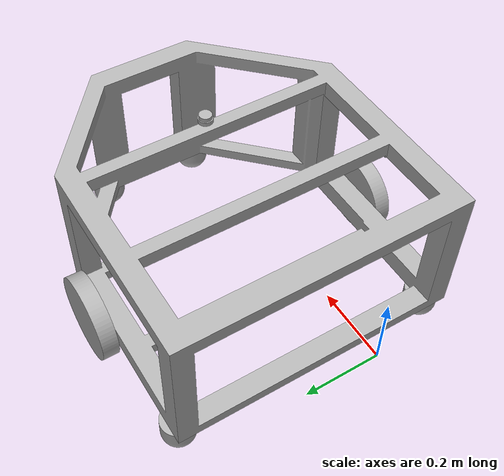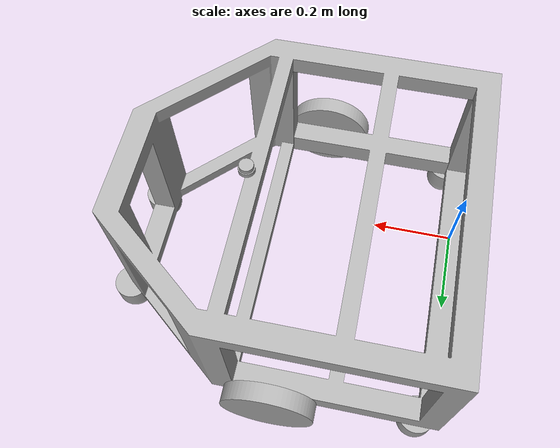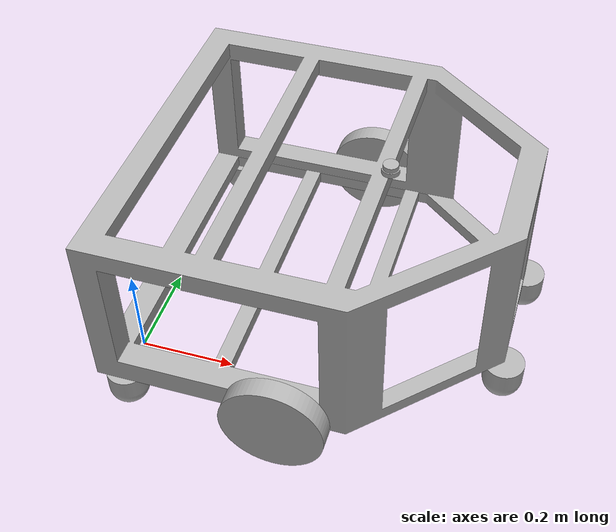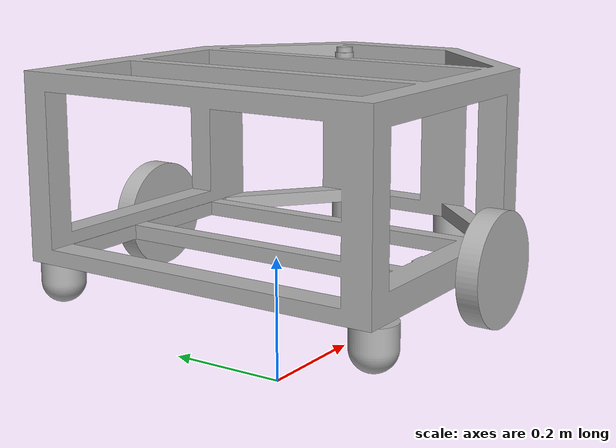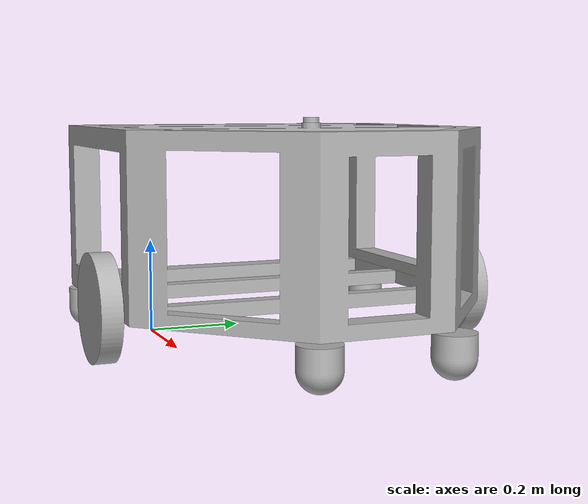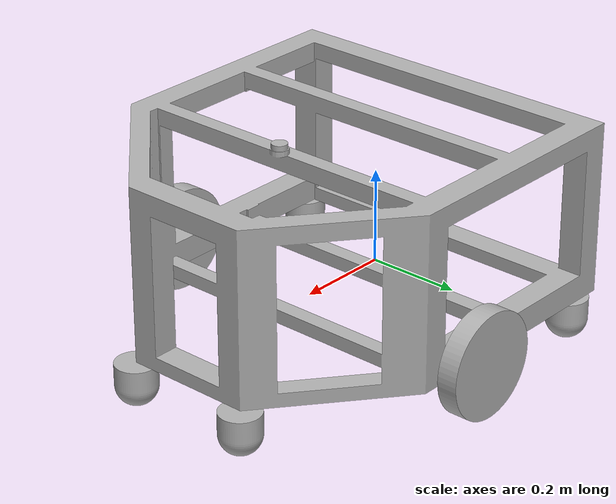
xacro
<?xml version="1.0" ?>
<robot name="brobot" xmlns:xacro="http://www.ros.org/wiki/xacro">

<xacro:include filename="$(find brobot)/urdf/materials.xacro" />
<xacro:include filename="$(find brobot)/urdf/brobot.trans" />
<xacro:include filename="$(find brobot)/urdf/brobot.gazebo" />
<link name="base_link">
  <inertial>
    <origin xyz="0.36008722023992734 0.17877322415490032 0.28599116682455195" rpy="0 0 0"/>
    <mass value="17.09676932760313"/>
    <inertia ixx="1.413287" iyy="1.384993" izz="2.203209" ixy="-0.033701" iyz="-0.001099" ixz="-0.005215"/>
  </inertial>
  <visual>
    <origin xyz="0 0 0" rpy="0 0 0"/>
    <geometry>
      <mesh filename="package://brobot/meshes/base_link.stl" scale="0.001 0.001 0.001"/>
    </geometry>
    <material name="silver"/>
  </visual>
  <collision>
    <origin xyz="0 0 0" rpy="0 0 0"/>
    <geometry>
      <mesh filename="package://brobot/meshes/base_link.stl" scale="0.001 0.001 0.001"/>
    </geometry>
  </collision>
</link>

<link name="r_wheel_1">
  <inertial>
    <origin xyz="-3.2856902820732614e-07 0.019999608403562186 1.1163417079629312e-08" rpy="0 0 0"/>
    <mass value="1.399469571431377"/>
    <inertia ixx="0.003862" iyy="0.007352" izz="0.003862" ixy="0.0" iyz="0.0" ixz="-0.0"/>
  </inertial>
  <visual>
    <origin xyz="-0.363812 -0.529033 -0.126483" rpy="0 0 0"/>
    <geometry>
      <mesh filename="package://brobot/meshes/r_wheel_1.stl" scale="0.001 0.001 0.001"/>
    </geometry>
    <material name="silver"/>
  </visual>
  <collision>
    <origin xyz="-0.363812 -0.529033 -0.126483" rpy="0 0 0"/>
    <geometry>
      <mesh filename="package://brobot/meshes/r_wheel_1.stl" scale="0.001 0.001 0.001"/>
    </geometry>
  </collision>
</link>

<link name="l_wheel_1">
  <inertial>
    <origin xyz="1.967615239073517e-07 -0.020000391596432687 -3.40553919092601e-07" rpy="0 0 0"/>
    <mass value="1.3994695714313785"/>
    <inertia ixx="0.003862" iyy="0.007352" izz="0.003862" ixy="0.0" iyz="-0.0" ixz="-0.0"/>
  </inertial>
  <visual>
    <origin xyz="-0.363368 0.174967 -0.126007" rpy="0 0 0"/>
    <geometry>
      <mesh filename="package://brobot/meshes/l_wheel_1.stl" scale="0.001 0.001 0.001"/>
    </geometry>
    <material name="silver"/>
  </visual>
  <collision>
    <origin xyz="-0.363368 0.174967 -0.126007" rpy="0 0 0"/>
    <geometry>
      <mesh filename="package://brobot/meshes/l_wheel_1.stl" scale="0.001 0.001 0.001"/>
    </geometry>
  </collision>
</link>

<link name="lidar_1">
  <inertial>
    <origin xyz="-2.4396960868200424e-07 -3.9159643477892914e-07 0.005000277452709756" rpy="0 0 0"/>
    <mass value="0.0074926984788116794"/>
    <inertia ixx="0.0" iyy="0.0" izz="1e-06" ixy="0.0" iyz="0.0" ixz="-0.0"/>
  </inertial>
  <visual>
    <origin xyz="-0.476907 -0.177033 -0.463615" rpy="0 0 0"/>
    <geometry>
      <mesh filename="package://brobot/meshes/lidar_1.stl" scale="0.001 0.001 0.001"/>
    </geometry>
    <material name="silver"/>
  </visual>
  <collision>
    <origin xyz="-0.476907 -0.177033 -0.463615" rpy="0 0 0"/>
    <geometry>
      <mesh filename="package://brobot/meshes/lidar_1.stl" scale="0.001 0.001 0.001"/>
    </geometry>
  </collision>
</link>

<link name="castor_2">
  <inertial>
    <origin xyz="0.05458324394921843 0.19796760840356512 -0.18519171907690637" rpy="0 0 0"/>
    <mass value="0.3684764808057021"/>
    <inertia ixx="0.000298" iyy="0.000298" izz="0.000272" ixy="0.0" iyz="-0.0" ixz="-0.0"/>
  </inertial>
  <visual>
    <origin xyz="0.009166 0.345935 -0.263586" rpy="0 0 0"/>
    <geometry>
      <mesh filename="package://brobot/meshes/castor_2.stl" scale="0.001 0.001 0.001"/>
    </geometry>
    <material name="silver"/>
  </visual>
  <collision>
    <origin xyz="0.009166 0.345935 -0.263586" rpy="0 0 0"/>
    <geometry>
      <mesh filename="package://brobot/meshes/castor_2.stl" scale="0.001 0.001 0.001"/>
    </geometry>
  </collision>
</link>

<link name="castor_3">
  <inertial>
    <origin xyz="0.054583243949218575 0.14796760840355988 -0.18519171907690607" rpy="0 0 0"/>
    <mass value="0.3684764808057021"/>
    <inertia ixx="0.000298" iyy="0.000298" izz="0.000272" ixy="0.0" iyz="-0.0" ixz="-0.0"/>
  </inertial>
  <visual>
    <origin xyz="0.009166 -0.354065 -0.263586" rpy="0 0 0"/>
    <geometry>
      <mesh filename="package://brobot/meshes/castor_3.stl" scale="0.001 0.001 0.001"/>
    </geometry>
    <material name="silver"/>
  </visual>
  <collision>
    <origin xyz="0.009166 -0.354065 -0.263586" rpy="0 0 0"/>
    <geometry>
      <mesh filename="package://brobot/meshes/castor_3.stl" scale="0.001 0.001 0.001"/>
    </geometry>
  </collision>
</link>

<link name="castor_1">
  <inertial>
    <origin xyz="2.4394920228321126e-07 -3.915964320588827e-07 -0.03522071907690685" rpy="0 0 0"/>
    <mass value="0.3684764808057021"/>
    <inertia ixx="0.000298" iyy="0.000298" izz="0.000272" ixy="0.0" iyz="-0.0" ixz="-0.0"/>
  </inertial>
  <visual>
    <origin xyz="-0.745417 -0.077033 -0.113615" rpy="0 0 0"/>
    <geometry>
      <mesh filename="package://brobot/meshes/castor_1.stl" scale="0.001 0.001 0.001"/>
    </geometry>
    <material name="silver"/>
  </visual>
  <collision>
    <origin xyz="-0.745417 -0.077033 -0.113615" rpy="0 0 0"/>
    <geometry>
      <mesh filename="package://brobot/meshes/castor_1.stl" scale="0.001 0.001 0.001"/>
    </geometry>
  </collision>
</link>

<link name="castor_4">
  <inertial>
    <origin xyz="2.4394920250525587e-07 -3.915964335576838e-07 -0.035220719076906784" rpy="0 0 0"/>
    <mass value="0.3684764808057021"/>
    <inertia ixx="0.000298" iyy="0.000298" izz="0.000272" ixy="0.0" iyz="-0.0" ixz="-0.0"/>
  </inertial>
  <visual>
    <origin xyz="-0.745417 -0.327033 -0.113615" rpy="0 0 0"/>
    <geometry>
      <mesh filename="package://brobot/meshes/castor_4.stl" scale="0.001 0.001 0.001"/>
    </geometry>
    <material name="silver"/>
  </visual>
  <collision>
    <origin xyz="-0.745417 -0.327033 -0.113615" rpy="0 0 0"/>
    <geometry>
      <mesh filename="package://brobot/meshes/castor_4.stl" scale="0.001 0.001 0.001"/>
    </geometry>
  </collision>
</link>

<joint name="Rev5" type="continuous">
  <origin xyz="0.363812 0.529033 0.126483" rpy="0 0 0"/>
  <parent link="base_link"/>
  <child link="r_wheel_1"/>
  <axis xyz="0.0 1.0 0.0"/>
</joint>

<joint name="Rev6" type="continuous">
  <origin xyz="0.363368 -0.174967 0.126007" rpy="0 0 0"/>
  <parent link="base_link"/>
  <child link="l_wheel_1"/>
  <axis xyz="-0.0 1.0 -0.0"/>
</joint>

<joint name="Rev7" type="continuous">
  <origin xyz="0.476907 0.177033 0.463615" rpy="0 0 0"/>
  <parent link="base_link"/>
  <child link="lidar_1"/>
  <axis xyz="-0.0 -0.0 1.0"/>
</joint>

<joint name="Rigid9" type="fixed">
  <origin xyz="-0.009166 -0.345935 0.263586" rpy="0 0 0"/>
  <parent link="base_link"/>
  <child link="castor_2"/>
</joint>

<joint name="Rigid10" type="fixed">
  <origin xyz="-0.009166 0.354065 0.263586" rpy="0 0 0"/>
  <parent link="base_link"/>
  <child link="castor_3"/>
</joint>

<joint name="Rigid12" type="fixed">
  <origin xyz="0.745417 0.077033 0.113615" rpy="0 0 0"/>
  <parent link="base_link"/>
  <child link="castor_1"/>
</joint>

<joint name="Rigid13" type="fixed">
  <origin xyz="0.745417 0.327033 0.113615" rpy="0 0 0"/>
  <parent link="base_link"/>
  <child link="castor_4"/>
</joint>

</robot>

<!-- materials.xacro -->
<robot name="brobot" xmlns:xacro="http://www.ros.org/wiki/xacro" >

<material name="silver">
  <color rgba="0.700 0.700 0.700 1.000"/>
</material>

</robot>

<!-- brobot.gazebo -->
<robot name="brobot" xmlns:xacro="http://www.ros.org/wiki/xacro" >

<xacro:property name="body_color" value="Gazebo/Silver" />

	<gazebo>
	  <plugin name="control" filename="libgazebo_ros_control.so"/>
	</gazebo>
	<gazebo reference="base_link">
	  <material>${body_color}</material>
	  <mu1>0.2</mu1>
	  <mu2>0.2</mu2>
	  <selfCollide>true</selfCollide>
	  <gravity>true</gravity>
	</gazebo>

	<gazebo reference="r_wheel_1">
	  <material>${body_color}</material>
	  <mu1>0.2</mu1>
	  <mu2>0.2</mu2>
	  <selfCollide>true</selfCollide>
	</gazebo>

	<gazebo reference="l_wheel_1">
	  <material>${body_color}</material>
	  <mu1>0.2</mu1>
	  <mu2>0.2</mu2>
	  <selfCollide>true</selfCollide>
	</gazebo>

	<gazebo reference="lidar_1">
	  <material>${body_color}</material>
	  <mu1>0.2</mu1>
	  <mu2>0.2</mu2>
	  <selfCollide>true</selfCollide>
	</gazebo>

	<gazebo reference="castor_2">
	  <material>${body_color}</material>
	  <mu1>0.2</mu1>
	  <mu2>0.2</mu2>
	  <selfCollide>true</selfCollide>
	</gazebo>

	<gazebo reference="castor_3">
	  <material>${body_color}</material>
	  <mu1>0.2</mu1>
	  <mu2>0.2</mu2>
	  <selfCollide>true</selfCollide>
	</gazebo>

	<gazebo reference="castor_1">
	  <material>${body_color}</material>
	  <mu1>0.2</mu1>
	  <mu2>0.2</mu2>
	  <selfCollide>true</selfCollide>
	</gazebo>

	<gazebo reference="castor_4">
	  <material>${body_color}</material>
	  <mu1>0.2</mu1>
	  <mu2>0.2</mu2>
	  <selfCollide>true</selfCollide>
	</gazebo>

	<gazebo>
  		<plugin name="differential_drive_controller" filename="libgazebo_ros_diff_drive.so">

		    <updateRate>10</updateRate>
		    <leftJoint>Rev6</leftJoint>
		    <rightJoint>Rev5</rightJoint>
		    <wheelSeparation>0.740</wheelSeparation>
		    <wheelDiameter>0.40</wheelDiameter>
		    <wheelAcceleration>1.0</wheelAcceleration>
		    <wheelTorque>20</wheelTorque>
		    <commandTopic>cmd_vel</commandTopic>
		    <robotBaseFrame>base_link</robotBaseFrame>
		    <odometryTopic>odom</odometryTopic>
    		    <odometryFrame>odom</odometryFrame>
    		    <odometrySource>0</odometrySource>
    		    <publishWheelTF>true</publishWheelTF>
   		    <publishOdom>false</publishOdom>
		    <publishWheelJointState>true</publishWheelJointState>
		    <legacyMode>false</legacyMode>
  		</plugin>
	</gazebo>

	<gazebo reference="lidar_1">
		    <sensor type="ray" name="ydlidarX2">
			      <pose>0 0 0 0 0 0</pose>
			      <visualize>true</visualize>
			      <update_rate>40</update_rate>
			      <ray>
				  <scan>
				      <horizontal>
					  <samples>720</samples>
					  <resolution>1</resolution>
					  <min_angle>-3.14</min_angle>
					  <max_angle>3.14</max_angle>
				       </horizontal>
				  </scan>
				  <range>
					  <min>0.10</min>
					  <max>30.0</max>
					  <resolution>0.01</resolution>
				  </range>
					<noise>
					  <type>gaussian</type>
					  <mean>0.0</mean>
					  <stddev>0.01</stddev>
					</noise>
			      </ray>
			      <plugin name="gazebo_ros_head_hokuyo_controller" filename="libgazebo_ros_laser.so">
				<topicName>/scan</topicName>
				<frameName>lidar_1</frameName>
			      </plugin>
		    </sensor>
  </gazebo>

</robot>
